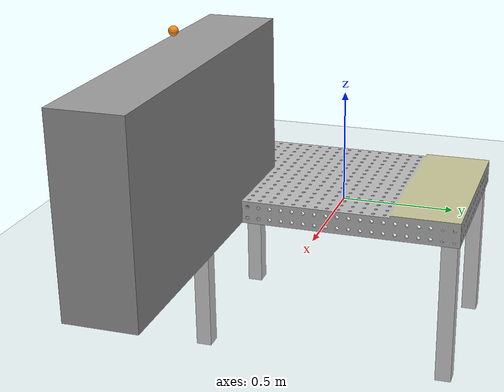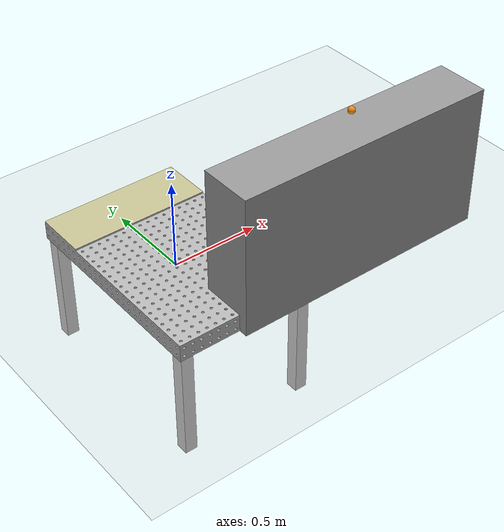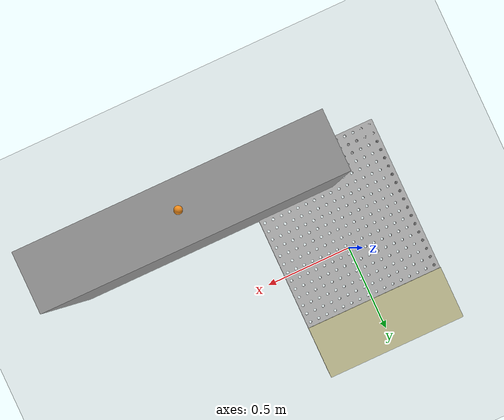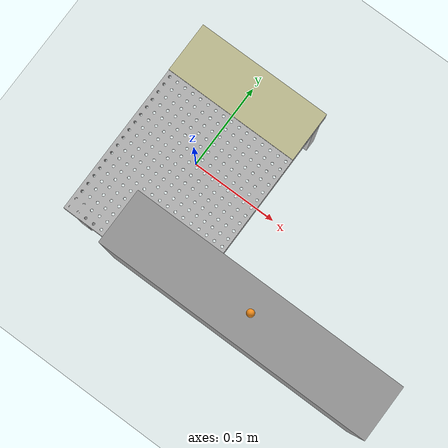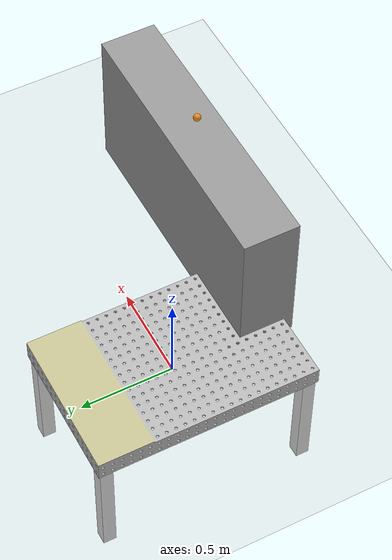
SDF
<sdf version='1.4'>
  <world name='default'>
    <light name='sun' type='directional'>
      <cast_shadows>1</cast_shadows>
      <pose>0 0 10 0 -0 0</pose>
      <diffuse>0.8 0.8 0.8 1</diffuse>
      <specular>0.2 0.2 0.2 1</specular>
      <attenuation>
        <range>1000</range>
        <constant>0.9</constant>
        <linear>0.01</linear>
        <quadratic>0.001</quadratic>
      </attenuation>
      <direction>-0.5 0.1 -0.9</direction>
    </light>
    <model name='ground_plane'>
      <static>1</static>
      <link name='link'>
        <collision name='collision'>
          <geometry>
            <plane>
              <normal>0 0 1</normal>
              <size>100 100</size>
            </plane>
          </geometry>
          <surface>
             <bounce>
              <restitution_coefficient>1</restitution_coefficient>
              <threshold>0.00</threshold>
            </bounce>
            <friction>
              <ode/>
            </friction>
            <contact>
              <ode>
                <kp>100000</kp>
                <kd>10</kd>
              </ode>
            </contact>
          </surface>
          <max_contacts>10</max_contacts>
        </collision>
        <visual name='visual'>
          <cast_shadows>0</cast_shadows>
          <geometry>
            <plane>
              <normal>0 0 1</normal>
              <size>100 100</size>
            </plane>
          </geometry>
          <material>
            <script>
              <uri>file://media/materials/scripts/gazebo.material</uri>
              <name>Gazebo/Grey</name>
            </script>
          </material>
        </visual>
        <velocity_decay>
          <linear>0</linear>
          <angular>0</angular>
        </velocity_decay>
        <self_collide>0</self_collide>
        <kinematic>0</kinematic>
        <gravity>1</gravity>
      </link>
    </model>
    <physics type='ode'>
      <max_step_size>0.001</max_step_size>
      <real_time_factor>1</real_time_factor>
      <real_time_update_rate>1000</real_time_update_rate>
      <gravity>0 0 -9.8</gravity>
    </physics>
    <scene>
      <ambient>0.4 0.4 0.4 1</ambient>
      <background>0.7 0.7 0.7 1</background>
      <shadows>1</shadows>
    </scene>

    <model name='Ping Pong Table'>
      <static>1</static>
      <link name='table'>
        <gravity>1</gravity>
        <visual name='visual1'>
          <geometry>
            <mesh>
              <uri>file:///home/chentao/.gazebo/models/table/table.dae</uri>
            </mesh>
          </geometry>
        </visual>
        <collision name='collision1'>
          <geometry>
            <mesh>
              <uri>file:///home/chentao/.gazebo/models/table/table.dae</uri>
            </mesh>
          </geometry>
          <max_contacts>1000</max_contacts>
          <surface>
             <bounce>
              <restitution_coefficient>1</restitution_coefficient>
              <threshold>0.001</threshold>
            </bounce>
            <friction>
              <ode>
                <mu>0</mu>
                <mu2>0</mu2>
              </ode>
            </friction>
            <contact>
              <ode>
                <kp>100000</kp>
                <kd>500</kd>
              </ode>
            </contact>
          </surface>
        </collision>
        <velocity_decay>
          <linear>0</linear>
          <angular>0</angular>
        </velocity_decay>
        <self_collide>0</self_collide>
        <kinematic>0</kinematic>
      </link>
      <pose>0 0 0 0 -0 0</pose>
    </model>

    <model name='unit_box_1'>
      <static>1</static>
      <pose>0.7 -0.5 0.4 0 0 0.0</pose>
      <link name='link'>
        <inertial>
          <mass>1</mass>
          <inertia>
            <ixx>1</ixx>
            <ixy>0</ixy>
            <ixz>0</ixz>
            <iyy>1</iyy>
            <iyz>0</iyz>
            <izz>1</izz>
          </inertia>
        </inertial>
        <collision name='collision'>
          <geometry>
            <box>
              <size>1.5 0.3 0.8</size>
            </box>
          </geometry>
          <max_contacts>10</max_contacts>
          <surface>
             <bounce>
              <restitution_coefficient>1</restitution_coefficient>
              <threshold>0.00</threshold>
            </bounce>
            <friction>
              <ode/>
            </friction>
            <contact>
              <ode>
                <kp>100000</kp>
                <kd>10</kd>
              </ode>
            </contact>
          </surface>
        </collision>
        <visual name='visual'>
          <geometry>
            <box>
              <size>1.5 0.3 0.8</size>
            </box>
          </geometry>
          <material>
            <script>
              <uri>file://media/materials/scripts/gazebo.material</uri>
              <name>Gazebo/Grey</name>
            </script>
          </material>
        </visual>
        <velocity_decay>
          <linear>0</linear>
          <angular>0</angular>
        </velocity_decay>
        <self_collide>0</self_collide>
        <kinematic>0</kinematic>
        <gravity>1</gravity>
      </link>
      <static>0</static>
    </model>
    <model name='Ping Pong Ball'>
      <static>0</static>
      <pose>0.7 -0.5 0.9 0 -0 0</pose>
      <link name='ball'>
        <inertial>
          <mass>0.0027</mass>
          <inertia>
            <ixx>2.37e-08</ixx>
            <iyy>2.37e-08</iyy>
            <izz>2.37e-08</izz>
            <ixy>0</ixy>
            <ixz>0</ixz>
            <iyz>0</iyz>
          </inertia>
        </inertial>
        <collision name='collision'>
          <geometry>
            <sphere>
              <radius>0.02</radius>
            </sphere>
          </geometry>
          <max_contacts>10</max_contacts>
          <surface>
            <bounce>
              <restitution_coefficient>1</restitution_coefficient>
              <threshold>0.001</threshold>
            </bounce>
            <contact>
              <ode>
                <max_vel>50000</max_vel>
                <kp>100000</kp>
                <kd>1</kd>
              </ode>
            </contact>
            <friction>
              <ode>
                <mu>0</mu>
                <mu2>0</mu2>
              </ode>
            </friction>
          </surface>
        </collision>
        <visual name='visual'>
          <geometry>
            <sphere>
              <radius>0.02</radius>
            </sphere>
          </geometry>
          <material>
            <script>
              <uri>file://media/materials/scripts/gazebo.material</uri>
              <name>Gazebo/Orange</name>
            </script>
          </material>
        </visual>
        <velocity_decay>
          <linear>0</linear>
          <angular>0</angular>
        </velocity_decay>
        <self_collide>0</self_collide>
        <kinematic>0</kinematic>
        <gravity>1</gravity>
      </link>

    </model>
  </world>
</sdf>
